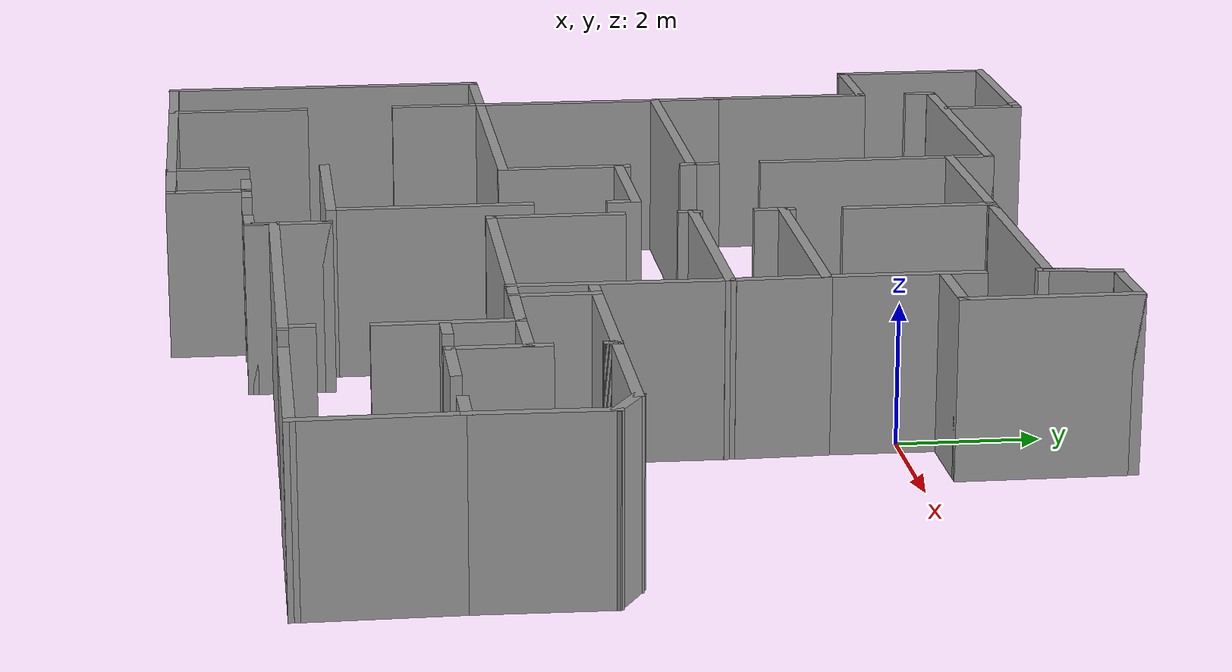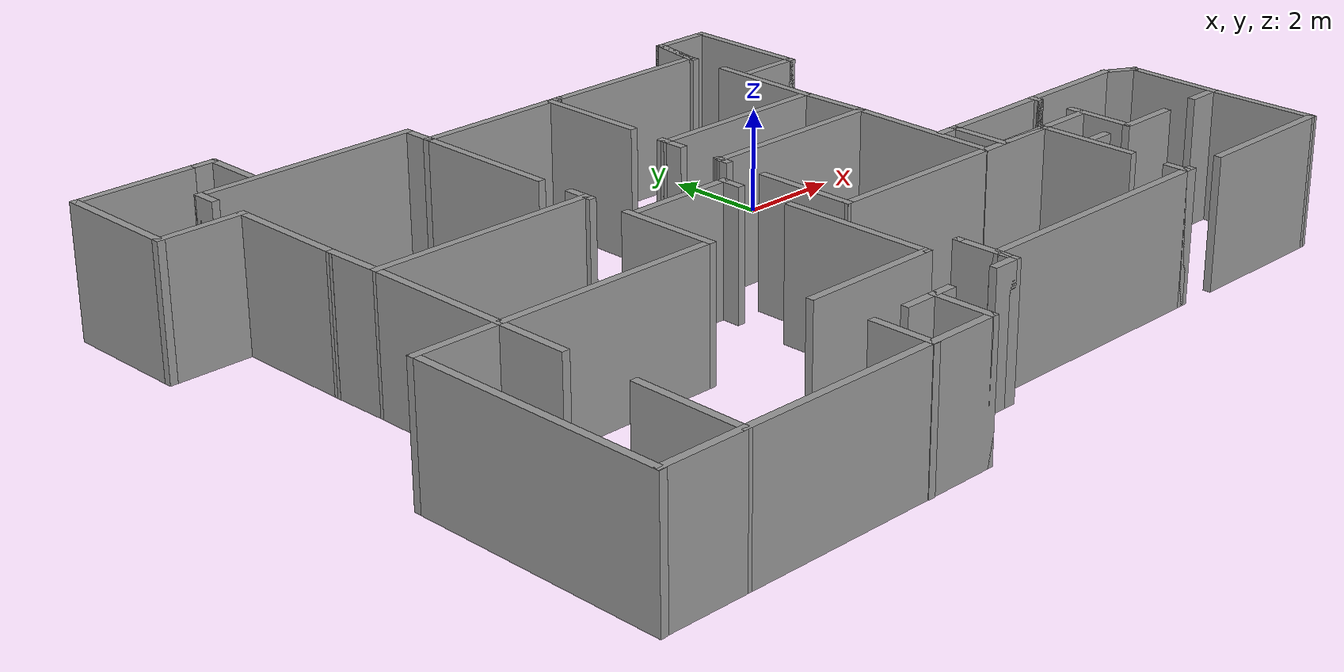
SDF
<?xml version='1.0'?>
<sdf version='1.6'>
  <model name='Escritorio_MA'>
    <pose frame=''>-3.18675 -3.01624 0 0 -0 0</pose>
    <link name='Wall_1'>
      <collision name='Wall_1_Collision'>
        <geometry>
          <box>
            <size>3.70439 0.15 2.5</size>
          </box>
        </geometry>
        <pose frame=''>0 0 1.25 0 -0 0</pose>
      </collision>
      <visual name='Wall_1_Visual'>
        <pose frame=''>0 0 1.25 0 -0 0</pose>
        <geometry>
          <box>
            <size>3.70439 0.15 2.5</size>
          </box>
        </geometry>
        <material>
          <script>
            <uri>file://media/materials/scripts/gazebo.material</uri>
            <name>Gazebo/Grey</name>
          </script>
          <ambient>1 1 1 1</ambient>
        </material>
      </visual>
      <pose frame=''>1.66391 -2.24542 0 0 0 -0.00656</pose>
    </link>
    <link name='Wall_10'>
      <collision name='Wall_10_Collision'>
        <geometry>
          <box>
            <size>0.5 0.15 2.5</size>
          </box>
        </geometry>
        <pose frame=''>0 0 1.25 0 -0 0</pose>
      </collision>
      <visual name='Wall_10_Visual'>
        <pose frame=''>0 0 1.25 0 -0 0</pose>
        <geometry>
          <box>
            <size>0.5 0.15 2.5</size>
          </box>
        </geometry>
        <material>
          <script>
            <uri>file://media/materials/scripts/gazebo.material</uri>
            <name>Gazebo/Grey</name>
          </script>
          <ambient>1 1 1 1</ambient>
        </material>
      </visual>
      <pose frame=''>-0.113251 1.79124 0 0 0 -1.5708</pose>
    </link>
    <link name='Wall_100'>
      <collision name='Wall_100_Collision'>
        <geometry>
          <box>
            <size>0.5 0.15 2.5</size>
          </box>
        </geometry>
        <pose frame=''>0 0 1.25 0 -0 0</pose>
      </collision>
      <visual name='Wall_100_Visual'>
        <pose frame=''>0 0 1.25 0 -0 0</pose>
        <geometry>
          <box>
            <size>0.5 0.15 2.5</size>
          </box>
        </geometry>
        <material>
          <script>
            <uri>file://media/materials/scripts/gazebo.material</uri>
            <name>Gazebo/Grey</name>
          </script>
          <ambient>1 1 1 1</ambient>
        </material>
      </visual>
      <pose frame=''>5.00115 -5.12951 0 0 -0 1.5708</pose>
    </link>
    <link name='Wall_102'>
      <collision name='Wall_102_Collision'>
        <geometry>
          <box>
            <size>2 0.15 2.5</size>
          </box>
        </geometry>
        <pose frame=''>0 0 1.25 0 -0 0</pose>
      </collision>
      <visual name='Wall_102_Visual'>
        <pose frame=''>0 0 1.25 0 -0 0</pose>
        <geometry>
          <box>
            <size>2 0.15 2.5</size>
          </box>
        </geometry>
        <material>
          <script>
            <uri>file://media/materials/scripts/gazebo.material</uri>
            <name>Gazebo/Grey</name>
          </script>
          <ambient>1 1 1 1</ambient>
        </material>
      </visual>
      <pose frame=''>5.04106 -3.1972 0 0 -0 1.5708</pose>
    </link>
    <link name='Wall_103'>
      <collision name='Wall_103_Collision'>
        <geometry>
          <box>
            <size>1.75007 0.15 2.5</size>
          </box>
        </geometry>
        <pose frame=''>0 0 1.25 0 -0 0</pose>
      </collision>
      <visual name='Wall_103_Visual'>
        <pose frame=''>0 0 1.25 0 -0 0</pose>
        <geometry>
          <box>
            <size>1.75007 0.15 2.5</size>
          </box>
        </geometry>
        <material>
          <script>
            <uri>file://media/materials/scripts/gazebo.material</uri>
            <name>Gazebo/Grey</name>
          </script>
          <ambient>1 1 1 1</ambient>
        </material>
      </visual>
      <pose frame=''>4.24106 -2.26464 0 0 -0 3.13214</pose>
    </link>
    <link name='Wall_104'>
      <collision name='Wall_104_Collision'>
        <geometry>
          <box>
            <size>1.75 0.15 2.5</size>
          </box>
        </geometry>
        <pose frame=''>0 0 1.25 0 -0 0</pose>
      </collision>
      <visual name='Wall_104_Visual'>
        <pose frame=''>0 0 1.25 0 -0 0</pose>
        <geometry>
          <box>
            <size>1.75 0.15 2.5</size>
          </box>
        </geometry>
        <material>
          <script>
            <uri>file://media/materials/scripts/gazebo.material</uri>
            <name>Gazebo/Grey</name>
          </script>
          <ambient>1 1 1 1</ambient>
        </material>
      </visual>
      <pose frame=''>4.24106 -2.2722 0 0 -0 0</pose>
    </link>
    <link name='Wall_105'>
      <collision name='Wall_105_Collision'>
        <geometry>
          <box>
            <size>0.15 0.15 2.5</size>
          </box>
        </geometry>
        <pose frame=''>0 0 1.25 0 -0 0</pose>
      </collision>
      <visual name='Wall_105_Visual'>
        <pose frame=''>0 0 1.25 0 -0 0</pose>
        <geometry>
          <box>
            <size>0.15 0.15 2.5</size>
          </box>
        </geometry>
        <material>
          <script>
            <uri>file://media/materials/scripts/gazebo.material</uri>
            <name>Gazebo/Grey</name>
          </script>
          <ambient>1 1 1 1</ambient>
        </material>
      </visual>
      <pose frame=''>5.04106 -2.2722 0 0 -0 0</pose>
    </link>
    <link name='Wall_107'>
      <collision name='Wall_107_Collision'>
        <geometry>
          <box>
            <size>0.25 0.15 2.5</size>
          </box>
        </geometry>
        <pose frame=''>0 0 1.25 0 -0 0</pose>
      </collision>
      <visual name='Wall_107_Visual'>
        <pose frame=''>0 0 1.25 0 -0 0</pose>
        <geometry>
          <box>
            <size>0.25 0.15 2.5</size>
          </box>
        </geometry>
        <material>
          <script>
            <uri>file://media/materials/scripts/gazebo.material</uri>
            <name>Gazebo/Grey</name>
          </script>
          <ambient>1 1 1 1</ambient>
        </material>
      </visual>
      <pose frame=''>5.05115 -5.30451 0 0 -0 0</pose>
    </link>
    <link name='Wall_109'>
      <collision name='Wall_109_Collision'>
        <geometry>
          <box>
            <size>3 0.15 2.5</size>
          </box>
        </geometry>
        <pose frame=''>0 0 1.25 0 -0 0</pose>
      </collision>
      <visual name='Wall_109_Visual'>
        <pose frame=''>0 0 1.25 0 -0 0</pose>
        <geometry>
          <box>
            <size>3 0.15 2.5</size>
          </box>
        </geometry>
        <material>
          <script>
            <uri>file://media/materials/scripts/gazebo.material</uri>
            <name>Gazebo/Grey</name>
          </script>
          <ambient>1 1 1 1</ambient>
        </material>
      </visual>
      <pose frame=''>7.40069 -5.31727 0 0 -0 0</pose>
    </link>
    <link name='Wall_110'>
      <collision name='Wall_110_Collision'>
        <geometry>
          <box>
            <size>2.21975 0.15 2.5</size>
          </box>
        </geometry>
        <pose frame=''>0 0 1.25 0 -0 0</pose>
      </collision>
      <visual name='Wall_110_Visual'>
        <pose frame=''>0 0 1.25 0 -0 0</pose>
        <geometry>
          <box>
            <size>2.21975 0.15 2.5</size>
          </box>
        </geometry>
        <material>
          <script>
            <uri>file://media/materials/scripts/gazebo.material</uri>
            <name>Gazebo/Grey</name>
          </script>
          <ambient>1 1 1 1</ambient>
        </material>
      </visual>
      <pose frame=''>8.81624 -4.28244 0 0 -0 1.57993</pose>
    </link>
    <link name='Wall_111'>
      <collision name='Wall_111_Collision'>
        <geometry>
          <box>
            <size>0.75 0.15 2.5</size>
          </box>
        </geometry>
        <pose frame=''>0 0 1.25 0 -0 0</pose>
      </collision>
      <visual name='Wall_111_Visual'>
        <pose frame=''>0 0 1.25 0 -0 0</pose>
        <geometry>
          <box>
            <size>0.75 0.15 2.5</size>
          </box>
        </geometry>
        <material>
          <script>
            <uri>file://media/materials/scripts/gazebo.material</uri>
            <name>Gazebo/Grey</name>
          </script>
          <ambient>1 1 1 1</ambient>
        </material>
      </visual>
      <pose frame=''>8.50679 -3.24761 0 0 -0 3.14159</pose>
    </link>
    <link name='Wall_113'>
      <collision name='Wall_113_Collision'>
        <geometry>
          <box>
            <size>1.25 0.15 2.5</size>
          </box>
        </geometry>
        <pose frame=''>0 0 1.25 0 -0 0</pose>
      </collision>
      <visual name='Wall_113_Visual'>
        <pose frame=''>0 0 1.25 0 -0 0</pose>
        <geometry>
          <box>
            <size>1.25 0.15 2.5</size>
          </box>
        </geometry>
        <material>
          <script>
            <uri>file://media/materials/scripts/gazebo.material</uri>
            <name>Gazebo/Grey</name>
          </script>
          <ambient>1 1 1 1</ambient>
        </material>
      </visual>
      <pose frame=''>6.72853 -3.26602 0 0 -0 3.14159</pose>
    </link>
    <link name='Wall_115'>
      <collision name='Wall_115_Collision'>
        <geometry>
          <box>
            <size>0.5 0.15 2.5</size>
          </box>
        </geometry>
        <pose frame=''>0 0 1.25 0 -0 0</pose>
      </collision>
      <visual name='Wall_115_Visual'>
        <pose frame=''>0 0 1.25 0 -0 0</pose>
        <geometry>
          <box>
            <size>0.5 0.15 2.5</size>
          </box>
        </geometry>
        <material>
          <script>
            <uri>file://media/materials/scripts/gazebo.material</uri>
            <name>Gazebo/Grey</name>
          </script>
          <ambient>1 1 1 1</ambient>
        </material>
      </visual>
      <pose frame=''>5.33071 -3.2434 0 0 -0 0</pose>
    </link>
    <link name='Wall_117'>
      <collision name='Wall_117_Collision'>
        <geometry>
          <box>
            <size>1.25 0.15 2.5</size>
          </box>
        </geometry>
        <pose frame=''>0 0 1.25 0 -0 0</pose>
      </collision>
      <visual name='Wall_117_Visual'>
        <pose frame=''>0 0 1.25 0 -0 0</pose>
        <geometry>
          <box>
            <size>1.25 0.15 2.5</size>
          </box>
        </geometry>
        <material>
          <script>
            <uri>file://media/materials/scripts/gazebo.material</uri>
            <name>Gazebo/Grey</name>
          </script>
          <ambient>1 1 1 1</ambient>
        </material>
      </visual>
      <pose frame=''>3.91898 -1.72001 0 0 -0 1.5708</pose>
    </link>
    <link name='Wall_118'>
      <collision name='Wall_118_Collision'>
        <geometry>
          <box>
            <size>4.56186 0.15 2.5</size>
          </box>
        </geometry>
        <pose frame=''>0 0 1.25 0 -0 0</pose>
      </collision>
      <visual name='Wall_118_Visual'>
        <pose frame=''>0 0 1.25 0 -0 0</pose>
        <geometry>
          <box>
            <size>4.56186 0.15 2.5</size>
          </box>
        </geometry>
        <material>
          <script>
            <uri>file://media/materials/scripts/gazebo.material</uri>
            <name>Gazebo/Grey</name>
          </script>
          <ambient>1 1 1 1</ambient>
        </material>
      </visual>
      <pose frame=''>6.12491 -1.17038 0 0 0 -0.000167</pose>
    </link>
    <link name='Wall_119'>
      <collision name='Wall_119_Collision'>
        <geometry>
          <box>
            <size>0.75 0.15 2.5</size>
          </box>
        </geometry>
        <pose frame=''>0 0 1.25 0 -0 0</pose>
      </collision>
      <visual name='Wall_119_Visual'>
        <pose frame=''>0 0 1.25 0 -0 0</pose>
        <geometry>
          <box>
            <size>0.75 0.15 2.5</size>
          </box>
        </geometry>
        <material>
          <script>
            <uri>file://media/materials/scripts/gazebo.material</uri>
            <name>Gazebo/Grey</name>
          </script>
          <ambient>1 1 1 1</ambient>
        </material>
      </visual>
      <pose frame=''>8.59065 -1.32075 0 0 0 -0.523599</pose>
    </link>
    <link name='Wall_12'>
      <collision name='Wall_12_Collision'>
        <geometry>
          <box>
            <size>0.208216 0.15 2.5</size>
          </box>
        </geometry>
        <pose frame=''>0 0 1.25 0 -0 0</pose>
      </collision>
      <visual name='Wall_12_Visual'>
        <pose frame=''>0 0 1.25 0 -0 0</pose>
        <geometry>
          <box>
            <size>0.208216 0.15 2.5</size>
          </box>
        </geometry>
        <material>
          <script>
            <uri>file://media/materials/scripts/gazebo.material</uri>
            <name>Gazebo/Grey</name>
          </script>
          <ambient>1 1 1 1</ambient>
        </material>
      </visual>
      <pose frame=''>-0.10619 0.689011 0 0 -0 1.20959</pose>
    </link>
    <link name='Wall_120'>
      <collision name='Wall_120_Collision'>
        <geometry>
          <box>
            <size>1.9274 0.15 2.5</size>
          </box>
        </geometry>
        <pose frame=''>0 0 1.25 0 -0 0</pose>
      </collision>
      <visual name='Wall_120_Visual'>
        <pose frame=''>0 0 1.25 0 -0 0</pose>
        <geometry>
          <box>
            <size>1.9274 0.15 2.5</size>
          </box>
        </geometry>
        <material>
          <script>
            <uri>file://media/materials/scripts/gazebo.material</uri>
            <name>Gazebo/Grey</name>
          </script>
          <ambient>1 1 1 1</ambient>
        </material>
      </visual>
      <pose frame=''>8.82862 -2.35918 0 0 0 -1.59537</pose>
    </link>
    <link name='Wall_123'>
      <collision name='Wall_123_Collision'>
        <geometry>
          <box>
            <size>1.3592 0.15 2.5</size>
          </box>
        </geometry>
        <pose frame=''>0 0 1.25 0 -0 0</pose>
      </collision>
      <visual name='Wall_123_Visual'>
        <pose frame=''>0 0 1.25 0 -0 0</pose>
        <geometry>
          <box>
            <size>1.3592 0.15 2.5</size>
          </box>
        </geometry>
        <material>
          <script>
            <uri>file://media/materials/scripts/gazebo.material</uri>
            <name>Gazebo/Grey</name>
          </script>
          <ambient>1 1 1 1</ambient>
        </material>
      </visual>
      <pose frame=''>6.17853 -2.64131 0 0 -0 1.5708</pose>
    </link>
    <link name='Wall_125'>
      <collision name='Wall_125_Collision'>
        <geometry>
          <box>
            <size>1.25 0.15 2.5</size>
          </box>
        </geometry>
        <pose frame=''>0 0 1.25 0 -0 0</pose>
      </collision>
      <visual name='Wall_125_Visual'>
        <pose frame=''>0 0 1.25 0 -0 0</pose>
        <geometry>
          <box>
            <size>1.25 0.15 2.5</size>
          </box>
        </geometry>
        <material>
          <script>
            <uri>file://media/materials/scripts/gazebo.material</uri>
            <name>Gazebo/Grey</name>
          </script>
          <ambient>1 1 1 1</ambient>
        </material>
      </visual>
      <pose frame=''>5.59107 -2.2722 0 0 -0 0</pose>
    </link>
    <link name='Wall_127'>
      <collision name='Wall_127_Collision'>
        <geometry>
          <box>
            <size>0.25 0.15 2.5</size>
          </box>
        </geometry>
        <pose frame=''>0 0 1.25 0 -0 0</pose>
      </collision>
      <visual name='Wall_127_Visual'>
        <pose frame=''>0 0 1.25 0 -0 0</pose>
        <geometry>
          <box>
            <size>0.25 0.15 2.5</size>
          </box>
        </geometry>
        <material>
          <script>
            <uri>file://media/materials/scripts/gazebo.material</uri>
            <name>Gazebo/Grey</name>
          </script>
          <ambient>1 1 1 1</ambient>
        </material>
      </visual>
      <pose frame=''>6.16685 -1.21278 0 0 0 -1.5708</pose>
    </link>
    <link name='Wall_128'>
      <collision name='Wall_128_Collision'>
        <geometry>
          <box>
            <size>0.25 0.15 2.5</size>
          </box>
        </geometry>
        <pose frame=''>0 0 1.25 0 -0 0</pose>
      </collision>
      <visual name='Wall_128_Visual'>
        <pose frame=''>0 0 1.25 0 -0 0</pose>
        <geometry>
          <box>
            <size>0.25 0.15 2.5</size>
          </box>
        </geometry>
        <material>
          <script>
            <uri>file://media/materials/scripts/gazebo.material</uri>
            <name>Gazebo/Grey</name>
          </script>
          <ambient>1 1 1 1</ambient>
        </material>
      </visual>
      <pose frame=''>6.16685 -1.21278 0 0 -0 1.5708</pose>
    </link>
    <link name='Wall_131'>
      <collision name='Wall_131_Collision'>
        <geometry>
          <box>
            <size>0.5 0.15 2.5</size>
          </box>
        </geometry>
        <pose frame=''>0 0 1.25 0 -0 0</pose>
      </collision>
      <visual name='Wall_131_Visual'>
        <pose frame=''>0 0 1.25 0 -0 0</pose>
        <geometry>
          <box>
            <size>0.5 0.15 2.5</size>
          </box>
        </geometry>
        <material>
          <script>
            <uri>file://media/materials/scripts/gazebo.material</uri>
            <name>Gazebo/Grey</name>
          </script>
          <ambient>1 1 1 1</ambient>
        </material>
      </visual>
      <pose frame=''>3.74398 -1.17001 0 0 -0 3.14159</pose>
    </link>
    <link name='Wall_133'>
      <collision name='Wall_133_Collision'>
        <geometry>
          <box>
            <size>1.25 0.15 2.5</size>
          </box>
        </geometry>
        <pose frame=''>0 0 1.25 0 -0 0</pose>
      </collision>
      <visual name='Wall_133_Visual'>
        <pose frame=''>0 0 1.25 0 -0 0</pose>
        <geometry>
          <box>
            <size>1.25 0.15 2.5</size>
          </box>
        </geometry>
        <material>
          <script>
            <uri>file://media/materials/scripts/gazebo.material</uri>
            <name>Gazebo/Grey</name>
          </script>
          <ambient>1 1 1 1</ambient>
        </material>
      </visual>
      <pose frame=''>4.18254 3.55385 0 0 -0 0</pose>
    </link>
    <link name='Wall_134'>
      <collision name='Wall_134_Collision'>
        <geometry>
          <box>
            <size>2.5 0.15 2.5</size>
          </box>
        </geometry>
        <pose frame=''>0 0 1.25 0 -0 0</pose>
      </collision>
      <visual name='Wall_134_Visual'>
        <pose frame=''>0 0 1.25 0 -0 0</pose>
        <geometry>
          <box>
            <size>2.5 0.15 2.5</size>
          </box>
        </geometry>
        <material>
          <script>
            <uri>file://media/materials/scripts/gazebo.material</uri>
            <name>Gazebo/Grey</name>
          </script>
          <ambient>1 1 1 1</ambient>
        </material>
      </visual>
      <pose frame=''>4.73254 4.72885 0 0 -0 1.5708</pose>
    </link>
    <link name='Wall_135'>
      <collision name='Wall_135_Collision'>
        <geometry>
          <box>
            <size>1.25 0.15 2.5</size>
          </box>
        </geometry>
        <pose frame=''>0 0 1.25 0 -0 0</pose>
      </collision>
      <visual name='Wall_135_Visual'>
        <pose frame=''>0 0 1.25 0 -0 0</pose>
        <geometry>
          <box>
            <size>1.25 0.15 2.5</size>
          </box>
        </geometry>
        <material>
          <script>
            <uri>file://media/materials/scripts/gazebo.material</uri>
            <name>Gazebo/Grey</name>
          </script>
          <ambient>1 1 1 1</ambient>
        </material>
      </visual>
      <pose frame=''>4.18254 5.90385 0 0 -0 3.14159</pose>
    </link>
    <link name='Wall_136'>
      <collision name='Wall_136_Collision'>
        <geometry>
          <box>
            <size>1.0866 0.15 2.5</size>
          </box>
        </geometry>
        <pose frame=''>0 0 1.25 0 -0 0</pose>
      </collision>
      <visual name='Wall_136_Visual'>
        <pose frame=''>0 0 1.25 0 -0 0</pose>
        <geometry>
          <box>
            <size>1.0866 0.15 2.5</size>
          </box>
        </geometry>
        <material>
          <script>
            <uri>file://media/materials/scripts/gazebo.material</uri>
            <name>Gazebo/Grey</name>
          </script>
          <ambient>1 1 1 1</ambient>
        </material>
      </visual>
      <pose frame=''>3.55213 5.4425 0 0 0 -1.74336</pose>
    </link>
    <link name='Wall_137'>
      <collision name='Wall_137_Collision'>
        <geometry>
          <box>
            <size>1.08165 0.15 2.5</size>
          </box>
        </geometry>
        <pose frame=''>0 0 1.25 0 -0 0</pose>
      </collision>
      <visual name='Wall_137_Visual'>
        <pose frame=''>0 0 1.25 0 -0 0</pose>
        <geometry>
          <box>
            <size>1.08165 0.15 2.5</size>
          </box>
        </geometry>
        <material>
          <script>
            <uri>file://media/materials/scripts/gazebo.material</uri>
            <name>Gazebo/Grey</name>
          </script>
          <ambient>1 1 1 1</ambient>
        </material>
      </visual>
      <pose frame=''>3.55213 5.44502 0 0 -0 1.39731</pose>
    </link>
    <link name='Wall_138'>
      <collision name='Wall_138_Collision'>
        <geometry>
          <box>
            <size>0.15 0.15 2.5</size>
          </box>
        </geometry>
        <pose frame=''>0 0 1.25 0 -0 0</pose>
      </collision>
      <visual name='Wall_138_Visual'>
        <pose frame=''>0 0 1.25 0 -0 0</pose>
        <geometry>
          <box>
            <size>0.15 0.15 2.5</size>
          </box>
        </geometry>
        <material>
          <script>
            <uri>file://media/materials/scripts/gazebo.material</uri>
            <name>Gazebo/Grey</name>
          </script>
          <ambient>1 1 1 1</ambient>
        </material>
      </visual>
      <pose frame=''>3.63254 5.90385 0 0 -0 0</pose>
    </link>
    <link name='Wall_139'>
      <collision name='Wall_139_Collision'>
        <geometry>
          <box>
            <size>0.15 0.15 2.5</size>
          </box>
        </geometry>
        <pose frame=''>0 0 1.25 0 -0 0</pose>
      </collision>
      <visual name='Wall_139_Visual'>
        <pose frame=''>0 0 1.25 0 -0 0</pose>
        <geometry>
          <box>
            <size>0.15 0.15 2.5</size>
          </box>
        </geometry>
        <material>
          <script>
            <uri>file://media/materials/scripts/gazebo.material</uri>
            <name>Gazebo/Grey</name>
          </script>
          <ambient>1 1 1 1</ambient>
        </material>
      </visual>
      <pose frame=''>3.63254 5.90385 0 0 -0 0</pose>
    </link>
    <link name='Wall_140'>
      <collision name='Wall_140_Collision'>
        <geometry>
          <box>
            <size>0.15 0.15 2.5</size>
          </box>
        </geometry>
        <pose frame=''>0 0 1.25 0 -0 0</pose>
      </collision>
      <visual name='Wall_140_Visual'>
        <pose frame=''>0 0 1.25 0 -0 0</pose>
        <geometry>
          <box>
            <size>0.15 0.15 2.5</size>
          </box>
        </geometry>
        <material>
          <script>
            <uri>file://media/materials/scripts/gazebo.material</uri>
            <name>Gazebo/Grey</name>
          </script>
          <ambient>1 1 1 1</ambient>
        </material>
      </visual>
      <pose frame=''>3.63254 5.90385 0 0 -0 0</pose>
    </link>
    <link name='Wall_15'>
      <collision name='Wall_15_Collision'>
        <geometry>
          <box>
            <size>0.15 0.15 2.5</size>
          </box>
        </geometry>
        <pose frame=''>0 0 1.25 0 -0 0</pose>
      </collision>
      <visual name='Wall_15_Visual'>
        <pose frame=''>0 0 1.25 0 -0 0</pose>
        <geometry>
          <box>
            <size>0.15 0.15 2.5</size>
          </box>
        </geometry>
        <material>
          <script>
            <uri>file://media/materials/scripts/gazebo.material</uri>
            <name>Gazebo/Grey</name>
          </script>
          <ambient>1 1 1 1</ambient>
        </material>
      </visual>
      <pose frame=''>-0.113251 1.96624 0 0 -0 0</pose>
    </link>
    <link name='Wall_16'>
      <collision name='Wall_16_Collision'>
        <geometry>
          <box>
            <size>0.15 0.15 2.5</size>
          </box>
        </geometry>
        <pose frame=''>0 0 1.25 0 -0 0</pose>
      </collision>
      <visual name='Wall_16_Visual'>
        <pose frame=''>0 0 1.25 0 -0 0</pose>
        <geometry>
          <box>
            <size>0.15 0.15 2.5</size>
          </box>
        </geometry>
        <material>
          <script>
            <uri>file://media/materials/scripts/gazebo.material</uri>
            <name>Gazebo/Grey</name>
          </script>
          <ambient>1 1 1 1</ambient>
        </material>
      </visual>
      <pose frame=''>-0.113251 1.96624 0 0 -0 0</pose>
    </link>
    <link name='Wall_18'>
      <collision name='Wall_18_Collision'>
        <geometry>
          <box>
            <size>0.15 0.15 2.5</size>
          </box>
        </geometry>
        <pose frame=''>0 0 1.25 0 -0 0</pose>
      </collision>
      <visual name='Wall_18_Visual'>
        <pose frame=''>0 0 1.25 0 -0 0</pose>
        <geometry>
          <box>
            <size>0.15 0.15 2.5</size>
          </box>
        </geometry>
        <material>
          <script>
            <uri>file://media/materials/scripts/gazebo.material</uri>
            <name>Gazebo/Grey</name>
          </script>
          <ambient>1 1 1 1</ambient>
        </material>
      </visual>
      <pose frame=''>-0.113251 1.96624 0 0 -0 0</pose>
    </link>
    <link name='Wall_2'>
      <collision name='Wall_2_Collision'>
        <geometry>
          <box>
            <size>3.06926 0.15 2.5</size>
          </box>
        </geometry>
        <pose frame=''>0 0 1.25 0 -0 0</pose>
      </collision>
      <visual name='Wall_2_Visual'>
        <pose frame=''>0 0 1.25 0 -0 0</pose>
        <geometry>
          <box>
            <size>3.06926 0.15 2.5</size>
          </box>
        </geometry>
        <material>
          <script>
            <uri>file://media/materials/scripts/gazebo.material</uri>
            <name>Gazebo/Grey</name>
          </script>
          <ambient>1 1 1 1</ambient>
        </material>
      </visual>
      <pose frame=''>3.46518 -0.797647 0 0 -0 1.55427</pose>
    </link>
    <link name='Wall_20'>
      <collision name='Wall_20_Collision'>
        <geometry>
          <box>
            <size>0.15 0.15 2.5</size>
          </box>
        </geometry>
        <pose frame=''>0 0 1.25 0 -0 0</pose>
      </collision>
      <visual name='Wall_20_Visual'>
        <pose frame=''>0 0 1.25 0 -0 0</pose>
        <geometry>
          <box>
            <size>0.15 0.15 2.5</size>
          </box>
        </geometry>
        <material>
          <script>
            <uri>file://media/materials/scripts/gazebo.material</uri>
            <name>Gazebo/Grey</name>
          </script>
          <ambient>1 1 1 1</ambient>
        </material>
      </visual>
      <pose frame=''>-0.113251 1.96624 0 0 -0 0</pose>
    </link>
    <link name='Wall_21'>
      <collision name='Wall_21_Collision'>
        <geometry>
          <box>
            <size>0.15 0.15 2.5</size>
          </box>
        </geometry>
        <pose frame=''>0 0 1.25 0 -0 0</pose>
      </collision>
      <visual name='Wall_21_Visual'>
        <pose frame=''>0 0 1.25 0 -0 0</pose>
        <geometry>
          <box>
            <size>0.15 0.15 2.5</size>
          </box>
        </geometry>
        <material>
          <script>
            <uri>file://media/materials/scripts/gazebo.material</uri>
            <name>Gazebo/Grey</name>
          </script>
          <ambient>1 1 1 1</ambient>
        </material>
      </visual>
      <pose frame=''>-0.113251 1.96624 0 0 -0 0</pose>
    </link>
    <link name='Wall_22'>
      <collision name='Wall_22_Collision'>
        <geometry>
          <box>
            <size>0.25 0.15 2.5</size>
          </box>
        </geometry>
        <pose frame=''>0 0 1.25 0 -0 0</pose>
      </collision>
      <visual name='Wall_22_Visual'>
        <pose frame=''>0 0 1.25 0 -0 0</pose>
        <geometry>
          <box>
            <size>0.25 0.15 2.5</size>
          </box>
        </geometry>
        <material>
          <script>
            <uri>file://media/materials/scripts/gazebo.material</uri>
            <name>Gazebo/Grey</name>
          </script>
          <ambient>1 1 1 1</ambient>
        </material>
      </visual>
      <pose frame=''>-0.113251 2.01624 0 0 -0 1.5708</pose>
    </link>
    <link name='Wall_24'>
      <collision name='Wall_24_Collision'>
        <geometry>
          <box>
            <size>2.25607 0.15 2.5</size>
          </box>
        </geometry>
        <pose frame=''>0 0 1.25 0 -0 0</pose>
      </collision>
      <visual name='Wall_24_Visual'>
        <pose frame=''>0 0 1.25 0 -0 0</pose>
        <geometry>
          <box>
            <size>2.25607 0.15 2.5</size>
          </box>
        </geometry>
        <material>
          <script>
            <uri>file://media/materials/scripts/gazebo.material</uri>
            <name>Gazebo/Grey</name>
          </script>
          <ambient>1 1 1 1</ambient>
        </material>
      </visual>
      <pose frame=''>3.4694 3.01335 0 0 -0 1.55432</pose>
    </link>
    <link name='Wall_27'>
      <collision name='Wall_27_Collision'>
        <geometry>
          <box>
            <size>0.235064 0.15 2.5</size>
          </box>
        </geometry>
        <pose frame=''>0 0 1.25 0 -0 0</pose>
      </collision>
      <visual name='Wall_27_Visual'>
        <pose frame=''>0 0 1.25 0 -0 0</pose>
        <geometry>
          <box>
            <size>0.235064 0.15 2.5</size>
          </box>
        </geometry>
        <material>
          <script>
            <uri>file://media/materials/scripts/gazebo.material</uri>
            <name>Gazebo/Grey</name>
          </script>
          <ambient>1 1 1 1</ambient>
        </material>
      </visual>
      <pose frame=''>3.47424 4.9387 0 0 -0 1.62994</pose>
    </link>
    <link name='Wall_28'>
      <collision name='Wall_28_Collision'>
        <geometry>
          <box>
            <size>3.49543 0.15 2.5</size>
          </box>
        </geometry>
        <pose frame=''>0 0 1.25 0 -0 0</pose>
      </collision>
      <visual name='Wall_28_Visual'>
        <pose frame=''>0 0 1.25 0 -0 0</pose>
        <geometry>
          <box>
            <size>3.49543 0.15 2.5</size>
          </box>
        </geometry>
        <material>
          <script>
            <uri>file://media/materials/scripts/gazebo.material</uri>
            <name>Gazebo/Grey</name>
          </script>
          <ambient>1 1 1 1</ambient>
        </material>
      </visual>
      <pose frame=''>1.79923 4.9887 0 0 -0 3.13708</pose>
    </link>
    <link name='Wall_29'>
      <collision name='Wall_29_Collision'>
        <geometry>
          <box>
            <size>0.25 0.15 2.5</size>
          </box>
        </geometry>
        <pose frame=''>0 0 1.25 0 -0 0</pose>
      </collision>
      <visual name='Wall_29_Visual'>
        <pose frame=''>0 0 1.25 0 -0 0</pose>
        <geometry>
          <box>
            <size>0.25 0.15 2.5</size>
          </box>
        </geometry>
        <material>
          <script>
            <uri>file://media/materials/scripts/gazebo.material</uri>
            <name>Gazebo/Grey</name>
          </script>
          <ambient>1 1 1 1</ambient>
        </material>
      </visual>
      <pose frame=''>0.076749 4.99624 0 0 -0 3.14159</pose>
    </link>
    <link name='Wall_3'>
      <collision name='Wall_3_Collision'>
        <geometry>
          <box>
            <size>3.75 0.15 2.5</size>
          </box>
        </geometry>
        <pose frame=''>0 0 1.25 0 -0 0</pose>
      </collision>
      <visual name='Wall_3_Visual'>
        <pose frame=''>0 0 1.25 0 -0 0</pose>
        <geometry>
          <box>
            <size>3.75 0.15 2.5</size>
          </box>
        </geometry>
        <material>
          <script>
            <uri>file://media/materials/scripts/gazebo.material</uri>
            <name>Gazebo/Grey</name>
          </script>
          <ambient>1 1 1 1</ambient>
        </material>
      </visual>
      <pose frame=''>1.68931 0.661782 0 0 -0 3.14159</pose>
    </link>
    <link name='Wall_30'>
      <collision name='Wall_30_Collision'>
        <geometry>
          <box>
            <size>0.25 0.15 2.5</size>
          </box>
        </geometry>
        <pose frame=''>0 0 1.25 0 -0 0</pose>
      </collision>
      <visual name='Wall_30_Visual'>
        <pose frame=''>0 0 1.25 0 -0 0</pose>
        <geometry>
          <box>
            <size>0.25 0.15 2.5</size>
          </box>
        </geometry>
        <material>
          <script>
            <uri>file://media/materials/scripts/gazebo.material</uri>
            <name>Gazebo/Grey</name>
          </script>
          <ambient>1 1 1 1</ambient>
        </material>
      </visual>
      <pose frame=''>-0.023251 4.99624 0 0 -0 3.14159</pose>
    </link>
    <link name='Wall_31'>
      <collision name='Wall_31_Collision'>
        <geometry>
          <box>
            <size>2.25 0.15 2.5</size>
          </box>
        </geometry>
        <pose frame=''>0 0 1.25 0 -0 0</pose>
      </collision>
      <visual name='Wall_31_Visual'>
        <pose frame=''>0 0 1.25 0 -0 0</pose>
        <geometry>
          <box>
            <size>2.25 0.15 2.5</size>
          </box>
        </geometry>
        <material>
          <script>
            <uri>file://media/materials/scripts/gazebo.material</uri>
            <name>Gazebo/Grey</name>
          </script>
          <ambient>1 1 1 1</ambient>
        </material>
      </visual>
      <pose frame=''>-0.073251 3.94624 0 0 0 -1.5708</pose>
    </link>
    <link name='Wall_33'>
      <collision name='Wall_33_Collision'>
        <geometry>
          <box>
            <size>3 0.15 2.5</size>
          </box>
        </geometry>
        <pose frame=''>0 0 1.25 0 -0 0</pose>
      </collision>
      <visual name='Wall_33_Visual'>
        <pose frame=''>0 0 1.25 0 -0 0</pose>
        <geometry>
          <box>
            <size>3 0.15 2.5</size>
          </box>
        </geometry>
        <material>
          <script>
            <uri>file://media/materials/scripts/gazebo.material</uri>
            <name>Gazebo/Grey</name>
          </script>
          <ambient>1 1 1 1</ambient>
        </material>
      </visual>
      <pose frame=''>-1.49825 4.99624 0 0 -0 3.14159</pose>
    </link>
    <link name='Wall_35'>
      <collision name='Wall_35_Collision'>
        <geometry>
          <box>
            <size>3 0.15 2.5</size>
          </box>
        </geometry>
        <pose frame=''>0 0 1.25 0 -0 0</pose>
      </collision>
      <visual name='Wall_35_Visual'>
        <pose frame=''>0 0 1.25 0 -0 0</pose>
        <geometry>
          <box>
            <size>3 0.15 2.5</size>
          </box>
        </geometry>
        <material>
          <script>
            <uri>file://media/materials/scripts/gazebo.material</uri>
            <name>Gazebo/Grey</name>
          </script>
          <ambient>1 1 1 1</ambient>
        </material>
      </visual>
      <pose frame=''>-2.92325 3.57124 0 0 0 -1.5708</pose>
    </link>
    <link name='Wall_37'>
      <collision name='Wall_37_Collision'>
        <geometry>
          <box>
            <size>0.75 0.15 2.5</size>
          </box>
        </geometry>
        <pose frame=''>0 0 1.25 0 -0 0</pose>
      </collision>
      <visual name='Wall_37_Visual'>
        <pose frame=''>0 0 1.25 0 -0 0</pose>
        <geometry>
          <box>
            <size>0.75 0.15 2.5</size>
          </box>
        </geometry>
        <material>
          <script>
            <uri>file://media/materials/scripts/gazebo.material</uri>
            <name>Gazebo/Grey</name>
          </script>
          <ambient>1 1 1 1</ambient>
        </material>
      </visual>
      <pose frame=''>-2.92325 5.29624 0 0 -0 1.5708</pose>
    </link>
    <link name='Wall_38'>
      <collision name='Wall_38_Collision'>
        <geometry>
          <box>
            <size>4.5 0.15 2.5</size>
          </box>
        </geometry>
        <pose frame=''>0 0 1.25 0 -0 0</pose>
      </collision>
      <visual name='Wall_38_Visual'>
        <pose frame=''>0 0 1.25 0 -0 0</pose>
        <geometry>
          <box>
            <size>4.5 0.15 2.5</size>
          </box>
        </geometry>
        <material>
          <script>
            <uri>file://media/materials/scripts/gazebo.material</uri>
            <name>Gazebo/Grey</name>
          </script>
          <ambient>1 1 1 1</ambient>
        </material>
      </visual>
      <pose frame=''>-5.09825 5.59624 0 0 -0 3.14159</pose>
    </link>
    <link name='Wall_39'>
      <collision name='Wall_39_Collision'>
        <geometry>
          <box>
            <size>0.16 0.15 2.5</size>
          </box>
        </geometry>
        <pose frame=''>0 0 1.25 0 -0 0</pose>
      </collision>
      <visual name='Wall_39_Visual'>
        <pose frame=''>0 0 1.25 0 -0 0</pose>
        <geometry>
          <box>
            <size>0.16 0.15 2.5</size>
          </box>
        </geometry>
        <material>
          <script>
            <uri>file://media/materials/scripts/gazebo.material</uri>
            <name>Gazebo/Grey</name>
          </script>
          <ambient>1 1 1 1</ambient>
        </material>
      </visual>
      <pose frame=''>-7.26825 5.59624 0 0 -0 0</pose>
    </link>
    <link name='Wall_4'>
      <collision name='Wall_4_Collision'>
        <geometry>
          <box>
            <size>0.295563 0.15 2.5</size>
          </box>
        </geometry>
        <pose frame=''>0 0 1.25 0 -0 0</pose>
      </collision>
      <visual name='Wall_4_Visual'>
        <pose frame=''>0 0 1.25 0 -0 0</pose>
        <geometry>
          <box>
            <size>0.295563 0.15 2.5</size>
          </box>
        </geometry>
        <material>
          <script>
            <uri>file://media/materials/scripts/gazebo.material</uri>
            <name>Gazebo/Grey</name>
          </script>
          <ambient>1 1 1 1</ambient>
        </material>
      </visual>
      <pose frame=''>-0.111972 0.589011 0 0 0 -1.58837</pose>
    </link>
    <link name='Wall_41'>
      <collision name='Wall_41_Collision'>
        <geometry>
          <box>
            <size>0.5 0.15 2.5</size>
          </box>
        </geometry>
        <pose frame=''>0 0 1.25 0 -0 0</pose>
      </collision>
      <visual name='Wall_41_Visual'>
        <pose frame=''>0 0 1.25 0 -0 0</pose>
        <geometry>
          <box>
            <size>0.5 0.15 2.5</size>
          </box>
        </geometry>
        <material>
          <script>
            <uri>file://media/materials/scripts/gazebo.material</uri>
            <name>Gazebo/Grey</name>
          </script>
          <ambient>1 1 1 1</ambient>
        </material>
      </visual>
      <pose frame=''>-7.27325 5.42124 0 0 0 -1.5708</pose>
    </link>
    <link name='Wall_43'>
      <collision name='Wall_43_Collision'>
        <geometry>
          <box>
            <size>2.5 0.15 2.5</size>
          </box>
        </geometry>
        <pose frame=''>0 0 1.25 0 -0 0</pose>
      </collision>
      <visual name='Wall_43_Visual'>
        <pose frame=''>0 0 1.25 0 -0 0</pose>
        <geometry>
          <box>
            <size>2.5 0.15 2.5</size>
          </box>
        </geometry>
        <material>
          <script>
            <uri>file://media/materials/scripts/gazebo.material</uri>
            <name>Gazebo/Grey</name>
          </script>
          <ambient>1 1 1 1</ambient>
        </material>
      </visual>
      <pose frame=''>-7.27791 3.25251 0 0 0 -1.5708</pose>
    </link>
    <link name='Wall_46'>
      <collision name='Wall_46_Collision'>
        <geometry>
          <box>
            <size>0.5 0.15 2.5</size>
          </box>
        </geometry>
        <pose frame=''>0 0 1.25 0 -0 0</pose>
      </collision>
      <visual name='Wall_46_Visual'>
        <pose frame=''>0 0 1.25 0 -0 0</pose>
        <geometry>
          <box>
            <size>0.5 0.15 2.5</size>
          </box>
        </geometry>
        <material>
          <script>
            <uri>file://media/materials/scripts/gazebo.material</uri>
            <name>Gazebo/Grey</name>
          </script>
          <ambient>1 1 1 1</ambient>
        </material>
      </visual>
      <pose frame=''>-2.9074 1.19769 0 0 0 -1.5708</pose>
    </link>
    <link name='Wall_47'>
      <collision name='Wall_47_Collision'>
        <geometry>
          <box>
            <size>4.5 0.15 2.5</size>
          </box>
        </geometry>
        <pose frame=''>0 0 1.25 0 -0 0</pose>
      </collision>
      <visual name='Wall_47_Visual'>
        <pose frame=''>0 0 1.25 0 -0 0</pose>
        <geometry>
          <box>
            <size>4.5 0.15 2.5</size>
          </box>
        </geometry>
        <material>
          <script>
            <uri>file://media/materials/scripts/gazebo.material</uri>
            <name>Gazebo/Grey</name>
          </script>
          <ambient>1 1 1 1</ambient>
        </material>
      </visual>
      <pose frame=''>-5.0824 1.02269 0 0 -0 3.14159</pose>
    </link>
    <link name='Wall_48'>
      <collision name='Wall_48_Collision'>
        <geometry>
          <box>
            <size>1.20502 0.15 2.5</size>
          </box>
        </geometry>
        <pose frame=''>0 0 1.25 0 -0 0</pose>
      </collision>
      <visual name='Wall_48_Visual'>
        <pose frame=''>0 0 1.25 0 -0 0</pose>
        <geometry>
          <box>
            <size>1.20502 0.15 2.5</size>
          </box>
        </geometry>
        <material>
          <script>
            <uri>file://media/materials/scripts/gazebo.material</uri>
            <name>Gazebo/Grey</name>
          </script>
          <ambient>1 1 1 1</ambient>
        </material>
      </visual>
      <pose frame=''>-7.26765 1.5501 0 0 -0 1.59024</pose>
    </link>
    <link name='Wall_51'>
      <collision name='Wall_51_Collision'>
        <geometry>
          <box>
            <size>1.75 0.15 2.5</size>
          </box>
        </geometry>
        <pose frame=''>0 0 1.25 0 -0 0</pose>
      </collision>
      <visual name='Wall_51_Visual'>
        <pose frame=''>0 0 1.25 0 -0 0</pose>
        <geometry>
          <box>
            <size>1.75 0.15 2.5</size>
          </box>
        </geometry>
        <material>
          <script>
            <uri>file://media/materials/scripts/gazebo.material</uri>
            <name>Gazebo/Grey</name>
          </script>
          <ambient>1 1 1 1</ambient>
        </material>
      </visual>
      <pose frame=''>-8.07791 4.42751 0 0 -0 3.14159</pose>
    </link>
    <link name='Wall_53'>
      <collision name='Wall_53_Collision'>
        <geometry>
          <box>
            <size>2.5 0.15 2.5</size>
          </box>
        </geometry>
        <pose frame=''>0 0 1.25 0 -0 0</pose>
      </collision>
      <visual name='Wall_53_Visual'>
        <pose frame=''>0 0 1.25 0 -0 0</pose>
        <geometry>
          <box>
            <size>2.5 0.15 2.5</size>
          </box>
        </geometry>
        <material>
          <script>
            <uri>file://media/materials/scripts/gazebo.material</uri>
            <name>Gazebo/Grey</name>
          </script>
          <ambient>1 1 1 1</ambient>
        </material>
      </visual>
      <pose frame=''>-8.87791 5.60251 0 0 -0 1.5708</pose>
    </link>
    <link name='Wall_54'>
      <collision name='Wall_54_Collision'>
        <geometry>
          <box>
            <size>2.5 0.15 2.5</size>
          </box>
        </geometry>
        <pose frame=''>0 0 1.25 0 -0 0</pose>
      </collision>
      <visual name='Wall_54_Visual'>
        <pose frame=''>0 0 1.25 0 -0 0</pose>
        <geometry>
          <box>
            <size>2.5 0.15 2.5</size>
          </box>
        </geometry>
        <material>
          <script>
            <uri>file://media/materials/scripts/gazebo.material</uri>
            <name>Gazebo/Grey</name>
          </script>
          <ambient>1 1 1 1</ambient>
        </material>
      </visual>
      <pose frame=''>-7.70291 6.77751 0 0 -0 0</pose>
    </link>
    <link name='Wall_55'>
      <collision name='Wall_55_Collision'>
        <geometry>
          <box>
            <size>0.5 0.15 2.5</size>
          </box>
        </geometry>
        <pose frame=''>0 0 1.25 0 -0 0</pose>
      </collision>
      <visual name='Wall_55_Visual'>
        <pose frame=''>0 0 1.25 0 -0 0</pose>
        <geometry>
          <box>
            <size>0.5 0.15 2.5</size>
          </box>
        </geometry>
        <material>
          <script>
            <uri>file://media/materials/scripts/gazebo.material</uri>
            <name>Gazebo/Grey</name>
          </script>
          <ambient>1 1 1 1</ambient>
        </material>
      </visual>
      <pose frame=''>-6.35291 6.77751 0 0 -0 0</pose>
    </link>
    <link name='Wall_56'>
      <collision name='Wall_56_Collision'>
        <geometry>
          <box>
            <size>1.25 0.15 2.5</size>
          </box>
        </geometry>
        <pose frame=''>0 0 1.25 0 -0 0</pose>
      </collision>
      <visual name='Wall_56_Visual'>
        <pose frame=''>0 0 1.25 0 -0 0</pose>
        <geometry>
          <box>
            <size>1.25 0.15 2.5</size>
          </box>
        </geometry>
        <material>
          <script>
            <uri>file://media/materials/scripts/gazebo.material</uri>
            <name>Gazebo/Grey</name>
          </script>
          <ambient>1 1 1 1</ambient>
        </material>
      </visual>
      <pose frame=''>-6.17791 6.22751 0 0 0 -1.5708</pose>
    </link>
    <link name='Wall_58'>
      <collision name='Wall_58_Collision'>
        <geometry>
          <box>
            <size>3 0.15 2.5</size>
          </box>
        </geometry>
        <pose frame=''>0 0 1.25 0 -0 0</pose>
      </collision>
      <visual name='Wall_58_Visual'>
        <pose frame=''>0 0 1.25 0 -0 0</pose>
        <geometry>
          <box>
            <size>3 0.15 2.5</size>
          </box>
        </geometry>
        <material>
          <script>
            <uri>file://media/materials/scripts/gazebo.material</uri>
            <name>Gazebo/Grey</name>
          </script>
          <ambient>1 1 1 1</ambient>
        </material>
      </visual>
      <pose frame=''>-7.2574 -0.402312 0 0 0 -1.5708</pose>
    </link>
    <link name='Wall_59'>
      <collision name='Wall_59_Collision'>
        <geometry>
          <box>
            <size>4.5 0.15 2.5</size>
          </box>
        </geometry>
        <pose frame=''>0 0 1.25 0 -0 0</pose>
      </collision>
      <visual name='Wall_59_Visual'>
        <pose frame=''>0 0 1.25 0 -0 0</pose>
        <geometry>
          <box>
            <size>4.5 0.15 2.5</size>
          </box>
        </geometry>
        <material>
          <script>
            <uri>file://media/materials/scripts/gazebo.material</uri>
            <name>Gazebo/Grey</name>
          </script>
          <ambient>1 1 1 1</ambient>
        </material>
      </visual>
      <pose frame=''>-5.0824 -1.82731 0 0 -0 0</pose>
    </link>
    <link name='Wall_6'>
      <collision name='Wall_6_Collision'>
        <geometry>
          <box>
            <size>2 0.15 2.5</size>
          </box>
        </geometry>
        <pose frame=''>0 0 1.25 0 -0 0</pose>
      </collision>
      <visual name='Wall_6_Visual'>
        <pose frame=''>0 0 1.25 0 -0 0</pose>
        <geometry>
          <box>
            <size>2 0.15 2.5</size>
          </box>
        </geometry>
        <material>
          <script>
            <uri>file://media/materials/scripts/gazebo.material</uri>
            <name>Gazebo/Grey</name>
          </script>
          <ambient>1 1 1 1</ambient>
        </material>
      </visual>
      <pose frame=''>-0.113251 -1.30876 0 0 -0 1.5708</pose>
    </link>
    <link name='Wall_60'>
      <collision name='Wall_60_Collision'>
        <geometry>
          <box>
            <size>2 0.15 2.5</size>
          </box>
        </geometry>
        <pose frame=''>0 0 1.25 0 -0 0</pose>
      </collision>
      <visual name='Wall_60_Visual'>
        <pose frame=''>0 0 1.25 0 -0 0</pose>
        <geometry>
          <box>
            <size>2 0.15 2.5</size>
          </box>
        </geometry>
        <material>
          <script>
            <uri>file://media/materials/scripts/gazebo.material</uri>
            <name>Gazebo/Grey</name>
          </script>
          <ambient>1 1 1 1</ambient>
        </material>
      </visual>
      <pose frame=''>-2.9074 -0.902312 0 0 -0 1.5708</pose>
    </link>
    <link name='Wall_62'>
      <collision name='Wall_62_Collision'>
        <geometry>
          <box>
            <size>0.25 0.15 2.5</size>
          </box>
        </geometry>
        <pose frame=''>0 0 1.25 0 -0 0</pose>
      </collision>
      <visual name='Wall_62_Visual'>
        <pose frame=''>0 0 1.25 0 -0 0</pose>
        <geometry>
          <box>
            <size>0.25 0.15 2.5</size>
          </box>
        </geometry>
        <material>
          <script>
            <uri>file://media/materials/scripts/gazebo.material</uri>
            <name>Gazebo/Grey</name>
          </script>
          <ambient>1 1 1 1</ambient>
        </material>
      </visual>
      <pose frame=''>-2.9074 0.972688 0 0 0 -1.5708</pose>
    </link>
    <link name='Wall_69'>
      <collision name='Wall_69_Collision'>
        <geometry>
          <box>
            <size>0.5 0.15 2.5</size>
          </box>
        </geometry>
        <pose frame=''>0 0 1.25 0 -0 0</pose>
      </collision>
      <visual name='Wall_69_Visual'>
        <pose frame=''>0 0 1.25 0 -0 0</pose>
        <geometry>
          <box>
            <size>0.5 0.15 2.5</size>
          </box>
        </geometry>
        <material>
          <script>
            <uri>file://media/materials/scripts/gazebo.material</uri>
            <name>Gazebo/Grey</name>
          </script>
          <ambient>1 1 1 1</ambient>
        </material>
      </visual>
      <pose frame=''>-0.797627 -0.252203 0 0 -0 1.5708</pose>
    </link>
    <link name='Wall_70'>
      <collision name='Wall_70_Collision'>
        <geometry>
          <box>
            <size>2.25 0.15 2.5</size>
          </box>
        </geometry>
        <pose frame=''>0 0 1.25 0 -0 0</pose>
      </collision>
      <visual name='Wall_70_Visual'>
        <pose frame=''>0 0 1.25 0 -0 0</pose>
        <geometry>
          <box>
            <size>2.25 0.15 2.5</size>
          </box>
        </geometry>
        <material>
          <script>
            <uri>file://media/materials/scripts/gazebo.material</uri>
            <name>Gazebo/Grey</name>
          </script>
          <ambient>1 1 1 1</ambient>
        </material>
      </visual>
      <pose frame=''>-1.84763 -0.077203 0 0 -0 3.14159</pose>
    </link>
    <link name='Wall_73'>
      <collision name='Wall_73_Collision'>
        <geometry>
          <box>
            <size>3 0.15 2.5</size>
          </box>
        </geometry>
        <pose frame=''>0 0 1.25 0 -0 0</pose>
      </collision>
      <visual name='Wall_73_Visual'>
        <pose frame=''>0 0 1.25 0 -0 0</pose>
        <geometry>
          <box>
            <size>3 0.15 2.5</size>
          </box>
        </geometry>
        <material>
          <script>
            <uri>file://media/materials/scripts/gazebo.material</uri>
            <name>Gazebo/Grey</name>
          </script>
          <ambient>1 1 1 1</ambient>
        </material>
      </visual>
      <pose frame=''>-0.813351 -3.05451 0 0 0 -1.5708</pose>
    </link>
    <link name='Wall_74'>
      <collision name='Wall_74_Collision'>
        <geometry>
          <box>
            <size>2.75 0.15 2.5</size>
          </box>
        </geometry>
        <pose frame=''>0 0 1.25 0 -0 0</pose>
      </collision>
      <visual name='Wall_74_Visual'>
        <pose frame=''>0 0 1.25 0 -0 0</pose>
        <geometry>
          <box>
            <size>2.75 0.15 2.5</size>
          </box>
        </geometry>
        <material>
          <script>
            <uri>file://media/materials/scripts/gazebo.material</uri>
            <name>Gazebo/Grey</name>
          </script>
          <ambient>1 1 1 1</ambient>
        </material>
      </visual>
      <pose frame=''>-2.11335 -4.47951 0 0 -0 3.14159</pose>
    </link>
    <link name='Wall_76'>
      <collision name='Wall_76_Collision'>
        <geometry>
          <box>
            <size>1.25 0.15 2.5</size>
          </box>
        </geometry>
        <pose frame=''>0 0 1.25 0 -0 0</pose>
      </collision>
      <visual name='Wall_76_Visual'>
        <pose frame=''>0 0 1.25 0 -0 0</pose>
        <geometry>
          <box>
            <size>1.25 0.15 2.5</size>
          </box>
        </geometry>
        <material>
          <script>
            <uri>file://media/materials/scripts/gazebo.material</uri>
            <name>Gazebo/Grey</name>
          </script>
          <ambient>1 1 1 1</ambient>
        </material>
      </visual>
      <pose frame=''>-3.38935 -6.22751 0 0 0 -1.5708</pose>
    </link>
    <link name='Wall_77'>
      <collision name='Wall_77_Collision'>
        <geometry>
          <box>
            <size>4.01817 0.15 2.5</size>
          </box>
        </geometry>
        <pose frame=''>0 0 1.25 0 -0 0</pose>
      </collision>
      <visual name='Wall_77_Visual'>
        <pose frame=''>0 0 1.25 0 -0 0</pose>
        <geometry>
          <box>
            <size>4.01817 0.15 2.5</size>
          </box>
        </geometry>
        <material>
          <script>
            <uri>file://media/materials/scripts/gazebo.material</uri>
            <name>Gazebo/Grey</name>
          </script>
          <ambient>1 1 1 1</ambient>
        </material>
      </visual>
      <pose frame=''>-5.32337 -6.76191 0 0 -0 3.13947</pose>
    </link>
    <link name='Wall_78'>
      <collision name='Wall_78_Collision'>
        <geometry>
          <box>
            <size>2.21888 0.15 2.5</size>
          </box>
        </geometry>
        <pose frame=''>0 0 1.25 0 -0 0</pose>
      </collision>
      <visual name='Wall_78_Visual'>
        <pose frame=''>0 0 1.25 0 -0 0</pose>
        <geometry>
          <box>
            <size>2.21888 0.15 2.5</size>
          </box>
        </geometry>
        <material>
          <script>
            <uri>file://media/materials/scripts/gazebo.material</uri>
            <name>Gazebo/Grey</name>
          </script>
          <ambient>1 1 1 1</ambient>
        </material>
      </visual>
      <pose frame=''>-7.24837 -5.72341 0 0 -0 1.56207</pose>
    </link>
    <link name='Wall_8'>
      <collision name='Wall_8_Collision'>
        <geometry>
          <box>
            <size>1.44906 0.15 2.5</size>
          </box>
        </geometry>
        <pose frame=''>0 0 1.25 0 -0 0</pose>
      </collision>
      <visual name='Wall_8_Visual'>
        <pose frame=''>0 0 1.25 0 -0 0</pose>
        <geometry>
          <box>
            <size>1.44906 0.15 2.5</size>
          </box>
        </geometry>
        <material>
          <script>
            <uri>file://media/materials/scripts/gazebo.material</uri>
            <name>Gazebo/Grey</name>
          </script>
          <ambient>1 1 1 1</ambient>
        </material>
      </visual>
      <pose frame=''>3.47357 1.31112 0 0 -0 1.59502</pose>
    </link>
    <link name='Wall_80'>
      <collision name='Wall_80_Collision'>
        <geometry>
          <box>
            <size>1.5 0.15 2.5</size>
          </box>
        </geometry>
        <pose frame=''>0 0 1.25 0 -0 0</pose>
      </collision>
      <visual name='Wall_80_Visual'>
        <pose frame=''>0 0 1.25 0 -0 0</pose>
        <geometry>
          <box>
            <size>1.5 0.15 2.5</size>
          </box>
        </geometry>
        <material>
          <script>
            <uri>file://media/materials/scripts/gazebo.material</uri>
            <name>Gazebo/Grey</name>
          </script>
          <ambient>1 1 1 1</ambient>
        </material>
      </visual>
      <pose frame=''>-7.2574 -2.50231 0 0 0 -1.5708</pose>
    </link>
    <link name='Wall_82'>
      <collision name='Wall_82_Collision'>
        <geometry>
          <box>
            <size>1.75 0.15 2.5</size>
          </box>
        </geometry>
        <pose frame=''>0 0 1.25 0 -0 0</pose>
      </collision>
      <visual name='Wall_82_Visual'>
        <pose frame=''>0 0 1.25 0 -0 0</pose>
        <geometry>
          <box>
            <size>1.75 0.15 2.5</size>
          </box>
        </geometry>
        <material>
          <script>
            <uri>file://media/materials/scripts/gazebo.material</uri>
            <name>Gazebo/Grey</name>
          </script>
          <ambient>1 1 1 1</ambient>
        </material>
      </visual>
      <pose frame=''>-8.0574 -1.82731 0 0 -0 3.14159</pose>
    </link>
    <link name='Wall_83'>
      <collision name='Wall_83_Collision'>
        <geometry>
          <box>
            <size>5.092 0.15 2.5</size>
          </box>
        </geometry>
        <pose frame=''>0 0 1.25 0 -0 0</pose>
      </collision>
      <visual name='Wall_83_Visual'>
        <pose frame=''>0 0 1.25 0 -0 0</pose>
        <geometry>
          <box>
            <size>5.092 0.15 2.5</size>
          </box>
        </geometry>
        <material>
          <script>
            <uri>file://media/materials/scripts/gazebo.material</uri>
            <name>Gazebo/Grey</name>
          </script>
          <ambient>1 1 1 1</ambient>
        </material>
      </visual>
      <pose frame=''>-8.8574 -4.29831 0 0 0 -1.5708</pose>
    </link>
    <link name='Wall_84'>
      <collision name='Wall_84_Collision'>
        <geometry>
          <box>
            <size>1.75 0.15 2.5</size>
          </box>
        </geometry>
        <pose frame=''>0 0 1.25 0 -0 0</pose>
      </collision>
      <visual name='Wall_84_Visual'>
        <pose frame=''>0 0 1.25 0 -0 0</pose>
        <geometry>
          <box>
            <size>1.75 0.15 2.5</size>
          </box>
        </geometry>
        <material>
          <script>
            <uri>file://media/materials/scripts/gazebo.material</uri>
            <name>Gazebo/Grey</name>
          </script>
          <ambient>1 1 1 1</ambient>
        </material>
      </visual>
      <pose frame=''>-8.0574 -6.75781 0 0 -0 0</pose>
    </link>
    <link name='Wall_86'>
      <collision name='Wall_86_Collision'>
        <geometry>
          <box>
            <size>1.5 0.15 2.5</size>
          </box>
        </geometry>
        <pose frame=''>0 0 1.25 0 -0 0</pose>
      </collision>
      <visual name='Wall_86_Visual'>
        <pose frame=''>0 0 1.25 0 -0 0</pose>
        <geometry>
          <box>
            <size>1.5 0.15 2.5</size>
          </box>
        </geometry>
        <material>
          <script>
            <uri>file://media/materials/scripts/gazebo.material</uri>
            <name>Gazebo/Grey</name>
          </script>
          <ambient>1 1 1 1</ambient>
        </material>
      </visual>
      <pose frame=''>-2.71435 -6.76601 0 0 -0 0</pose>
    </link>
    <link name='Wall_87'>
      <collision name='Wall_87_Collision'>
        <geometry>
          <box>
            <size>1.25 0.15 2.5</size>
          </box>
        </geometry>
        <pose frame=''>0 0 1.25 0 -0 0</pose>
      </collision>
      <visual name='Wall_87_Visual'>
        <pose frame=''>0 0 1.25 0 -0 0</pose>
        <geometry>
          <box>
            <size>1.25 0.15 2.5</size>
          </box>
        </geometry>
        <material>
          <script>
            <uri>file://media/materials/scripts/gazebo.material</uri>
            <name>Gazebo/Grey</name>
          </script>
          <ambient>1 1 1 1</ambient>
        </material>
      </visual>
      <pose frame=''>-2.03935 -6.21601 0 0 -0 1.5708</pose>
    </link>
    <link name='Wall_88'>
      <collision name='Wall_88_Collision'>
        <geometry>
          <box>
            <size>0.75 0.15 2.5</size>
          </box>
        </geometry>
        <pose frame=''>0 0 1.25 0 -0 0</pose>
      </collision>
      <visual name='Wall_88_Visual'>
        <pose frame=''>0 0 1.25 0 -0 0</pose>
        <geometry>
          <box>
            <size>0.75 0.15 2.5</size>
          </box>
        </geometry>
        <material>
          <script>
            <uri>file://media/materials/scripts/gazebo.material</uri>
            <name>Gazebo/Grey</name>
          </script>
          <ambient>1 1 1 1</ambient>
        </material>
      </visual>
      <pose frame=''>-2.33935 -5.66601 0 0 -0 3.14159</pose>
    </link>
    <link name='Wall_9'>
      <collision name='Wall_9_Collision'>
        <geometry>
          <box>
            <size>3.71531 0.15 2.5</size>
          </box>
        </geometry>
        <pose frame=''>0 0 1.25 0 -0 0</pose>
      </collision>
      <visual name='Wall_9_Visual'>
        <pose frame=''>0 0 1.25 0 -0 0</pose>
        <geometry>
          <box>
            <size>3.71531 0.15 2.5</size>
          </box>
        </geometry>
        <material>
          <script>
            <uri>file://media/materials/scripts/gazebo.material</uri>
            <name>Gazebo/Grey</name>
          </script>
          <ambient>1 1 1 1</ambient>
        </material>
      </visual>
      <pose frame=''>1.6694 1.96335 0 0 -0 3.13997</pose>
    </link>
    <link name='Wall_90'>
      <collision name='Wall_90_Collision'>
        <geometry>
          <box>
            <size>0.5 0.15 2.5</size>
          </box>
        </geometry>
        <pose frame=''>0 0 1.25 0 -0 0</pose>
      </collision>
      <visual name='Wall_90_Visual'>
        <pose frame=''>0 0 1.25 0 -0 0</pose>
        <geometry>
          <box>
            <size>0.5 0.15 2.5</size>
          </box>
        </geometry>
        <material>
          <script>
            <uri>file://media/materials/scripts/gazebo.material</uri>
            <name>Gazebo/Grey</name>
          </script>
          <ambient>1 1 1 1</ambient>
        </material>
      </visual>
      <pose frame=''>-1.86435 -5.66601 0 0 -0 0</pose>
    </link>
    <link name='Wall_92'>
      <collision name='Wall_92_Collision'>
        <geometry>
          <box>
            <size>0.5 0.15 2.5</size>
          </box>
        </geometry>
        <pose frame=''>0 0 1.25 0 -0 0</pose>
      </collision>
      <visual name='Wall_92_Visual'>
        <pose frame=''>0 0 1.25 0 -0 0</pose>
        <geometry>
          <box>
            <size>0.5 0.15 2.5</size>
          </box>
        </geometry>
        <material>
          <script>
            <uri>file://media/materials/scripts/gazebo.material</uri>
            <name>Gazebo/Grey</name>
          </script>
          <ambient>1 1 1 1</ambient>
        </material>
      </visual>
      <pose frame=''>-0.37385 -5.65451 0 0 -0 0</pose>
    </link>
    <link name='Wall_94'>
      <collision name='Wall_94_Collision'>
        <geometry>
          <box>
            <size>0.25 0.15 2.5</size>
          </box>
        </geometry>
        <pose frame=''>0 0 1.25 0 -0 0</pose>
      </collision>
      <visual name='Wall_94_Visual'>
        <pose frame=''>0 0 1.25 0 -0 0</pose>
        <geometry>
          <box>
            <size>0.25 0.15 2.5</size>
          </box>
        </geometry>
        <material>
          <script>
            <uri>file://media/materials/scripts/gazebo.material</uri>
            <name>Gazebo/Grey</name>
          </script>
          <ambient>1 1 1 1</ambient>
        </material>
      </visual>
      <pose frame=''>-0.14885 -5.65451 0 0 -0 0</pose>
    </link>
    <link name='Wall_95'>
      <collision name='Wall_95_Collision'>
        <geometry>
          <box>
            <size>1.25 0.15 2.5</size>
          </box>
        </geometry>
        <pose frame=''>0 0 1.25 0 -0 0</pose>
      </collision>
      <visual name='Wall_95_Visual'>
        <pose frame=''>0 0 1.25 0 -0 0</pose>
        <geometry>
          <box>
            <size>1.25 0.15 2.5</size>
          </box>
        </geometry>
        <material>
          <script>
            <uri>file://media/materials/scripts/gazebo.material</uri>
            <name>Gazebo/Grey</name>
          </script>
          <ambient>1 1 1 1</ambient>
        </material>
      </visual>
      <pose frame=''>-0.09885 -5.10451 0 0 -0 1.5708</pose>
    </link>
    <link name='Wall_96'>
      <collision name='Wall_96_Collision'>
        <geometry>
          <box>
            <size>0.15 0.15 2.5</size>
          </box>
        </geometry>
        <pose frame=''>0 0 1.25 0 -0 0</pose>
      </collision>
      <visual name='Wall_96_Visual'>
        <pose frame=''>0 0 1.25 0 -0 0</pose>
        <geometry>
          <box>
            <size>0.15 0.15 2.5</size>
          </box>
        </geometry>
        <material>
          <script>
            <uri>file://media/materials/scripts/gazebo.material</uri>
            <name>Gazebo/Grey</name>
          </script>
          <ambient>1 1 1 1</ambient>
        </material>
      </visual>
      <pose frame=''>-0.09885 -4.55451 0 0 -0 0</pose>
    </link>
    <link name='Wall_98'>
      <collision name='Wall_98_Collision'>
        <geometry>
          <box>
            <size>0.5 0.15 2.5</size>
          </box>
        </geometry>
        <pose frame=''>0 0 1.25 0 -0 0</pose>
      </collision>
      <visual name='Wall_98_Visual'>
        <pose frame=''>0 0 1.25 0 -0 0</pose>
        <geometry>
          <box>
            <size>0.5 0.15 2.5</size>
          </box>
        </geometry>
        <material>
          <script>
            <uri>file://media/materials/scripts/gazebo.material</uri>
            <name>Gazebo/Grey</name>
          </script>
          <ambient>1 1 1 1</ambient>
        </material>
      </visual>
      <pose frame=''>-0.09885 -5.47951 0 0 -0 1.5708</pose>
    </link>
    <link name='Wall_99'>
      <collision name='Wall_99_Collision'>
        <geometry>
          <box>
            <size>5.25 0.15 2.5</size>
          </box>
        </geometry>
        <pose frame=''>0 0 1.25 0 -0 0</pose>
      </collision>
      <visual name='Wall_99_Visual'>
        <pose frame=''>0 0 1.25 0 -0 0</pose>
        <geometry>
          <box>
            <size>5.25 0.15 2.5</size>
          </box>
        </geometry>
        <material>
          <script>
            <uri>file://media/materials/scripts/gazebo.material</uri>
            <name>Gazebo/Grey</name>
          </script>
          <ambient>1 1 1 1</ambient>
        </material>
      </visual>
      <pose frame=''>2.45115 -5.30451 0 0 -0 0</pose>
    </link>
    <static>1</static>
  </model>
</sdf>
